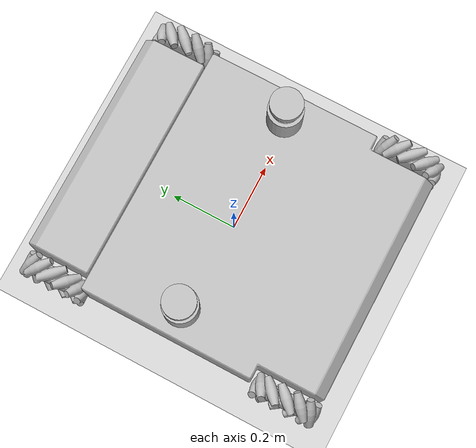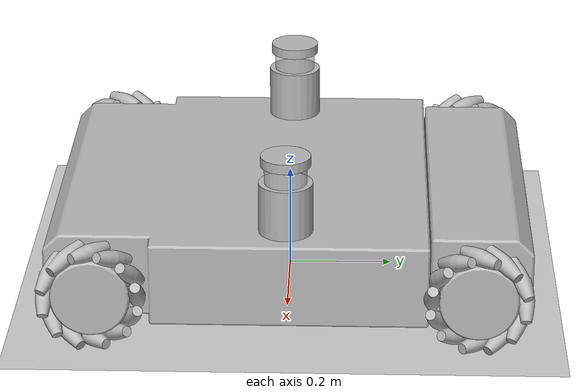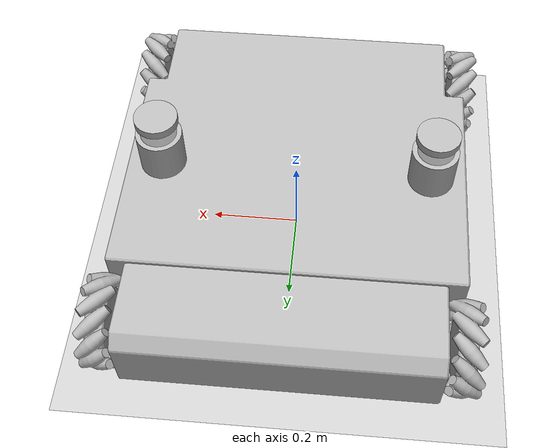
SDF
<?xml version="1.0" ?>
	<sdf version="1.6">
	<world name="velmaverse">

		<physics type="ode">
			<ode>
				<solver>
					<type>world</type>
					<iters>100</iters>
					<friction_model>cone_model</friction_model>
				</solver>
				<constraints>
					<cfm>1e-8</cfm>
				</constraints>
			</ode>
		</physics>

		<!-- Słońce -->
		<include>
			<uri>model://sun</uri>
		</include>

		<!-- Podłoga -->
		<model name="flooria">
			<include>
				<uri>model://flooria</uri>
			</include>
		</model>

		<!-- Platforma dynamiczna -->
		<model name="omnivelma">
			<include>
				<uri>model://omnivelma</uri>
			</include>
		</model>
	</world>
</sdf>

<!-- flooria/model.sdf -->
<sdf version="1.6">
    <model name="flooria">
		<plugin name="flooria" filename="libflooria.so"/>
        <static>true</static>
        <link name="base">
            <collision name="collision">
                <geometry>
                    <plane>
                        <normal>0 0 1</normal>
                        <size>100 100</size>
                    </plane>
                </geometry>
                <surface>
                    <friction>
                        <ode>
                            <mu>100</mu>
                            <mu2>100</mu2>
                        </ode>
                    </friction>
                </surface>
            </collision>
            <visual name="visual">
                <cast_shadows>false</cast_shadows>
                <geometry>
                    <plane>
                        <normal>0 0 1</normal>
                        <size>20 20</size>
                    </plane>
                </geometry>
                <material>
                    <script>
                        <uri>model://flooria/materials</uri>
                        <name>flooria/surface</name>
                    </script>
                </material>
            </visual>
        </link>
    </model>
</sdf>

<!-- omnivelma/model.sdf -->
<sdf version="1.6">
	<model name="omnivelma">
		<plugin name="omnivelma" filename="libomnivelma.so"/>
		<pose>0 0 0.1035 0 0 0</pose>
		<static>false</static>

		<!--Baza całości-->
		<link name="base">
			<pose>0 -0.081 0.019 0 0 0</pose>
			<collision name="base_collision">
				<geometry>
					<mesh>
						<uri>model://omnivelma/meshes/collider/base.dae</uri>
					</mesh>
				</geometry>
			</collision>
			<inertial>
				<mass>60</mass>
				<inertia>
					<ixx>2.72</ixx>
					<ixy>0</ixy>
					<ixz>0</ixz>
					<iyy>2.94</iyy>
					<iyz>0</iyz>
					<izz>5.40</izz>
				</inertia>
			</inertial>
			<visual name="base_visual">
				<geometry>
					<mesh>
						<uri>model://omnivelma/meshes/visual/base.dae</uri>
					</mesh>
				</geometry>
				<material>
					<script>
						<uri>model://omnivelma/materials/omnivelma.material</uri>
						<name>omnivelma/base</name>
					</script>
				</material>
			</visual>
		</link>

		<!-- Ruchomy przód -->
		<link name="front">
			<pose>0 0.364 0.018 0 0 0</pose>
			<collision name="front_collision">
				<geometry>
					<mesh>
						<uri>model://omnivelma/meshes/collider/front.dae</uri>
					</mesh>
				</geometry>
			</collision>
			<inertial>
				<mass>15</mass>
				<inertia>
					<ixx>0.0771</ixx>
					<ixy>0</ixy>
					<ixz>0</ixz>
					<iyy>0.7351</iyy>
					<iyz>0</iyz>
					<izz>0.7483</izz>
				</inertia>
			</inertial>
			<visual name="front_visual">
				<geometry>
					<mesh>
						<uri>model://omnivelma/meshes/visual/front.dae</uri>
					</mesh>
				</geometry>
				<material>
					<script>
						<uri>model://omnivelma/materials/omnivelma.material</uri>
						<name>omnivelma/base</name>
					</script>
				</material>
			</visual>
		</link>

		<!-- Czujniki laserowe (TODO pozycje do dokładniejszego dopracowania) -->
		<plugin name="omnivelma" filename="libmonokl_chain.so"/>
		<include>
			<uri>model://monokl</uri>
			<name>monokl_r</name>
			<pose>0.3 0 0.176 0 0 -1.570796</pose>
		</include>
		<include>
			<uri>model://monokl</uri>
			<name>monokl_l</name>
			<pose>-0.3 0 0.176 0 0 1.570796</pose>
		</include>
		<joint name="monokl_r_fix" type="fixed">
			<parent>base</parent>
			<child>monokl_r::base</child>
		</joint>
		<joint name="monokl_l_fix" type="fixed">
			<parent>base</parent>
			<child>monokl_l::base</child>
		</joint>

		<!-- Czujnik inercji -->
		<include>
			<uri>model://wewucho</uri>
			<name>wewucho</name>
			<pose>0 0 0 0 0 0</pose>
		</include>
		<joint name="wewucho_fix" type="fixed">
			<parent>base</parent>
			<child>wewucho::base</child>
		</joint>

		<!-- Koła wirtualne -->
		<link name="wheel_fl">
			<pose>-0.38 0.36 0 0 0 0</pose>
			<collision name="wheel_fl_collision">
				<geometry>
					<sphere>
						<radius>0.1016</radius>
					</sphere>
				</geometry>
				<surface>
					<friction>
						<ode>
							<mu>0.95</mu>
							<mu2>0.5</mu2>
							<fdir1>-0.707106781186548 -0.707106781186548 0</fdir1>
							<slip1>0.001</slip1>
							<slip2>0.1</slip2>
						</ode>
						<bullet>
							<friction>1</friction>
							<friction2>0</friction2>
							<fdir1>-0.707106781186548 -0.707106781186548 0</fdir1>
							<rolling_friction>0</rolling_friction>
						</bullet>
					</friction>
				</surface>
			</collision>
			<inertial>
				<mass>1.6</mass>
				<inertia>
					<ixx>0.008</ixx>
					<ixy>0</ixy>
					<ixz>0</ixz>
					<iyy>0.004738485</iyy>
					<iyz>0</iyz>
					<izz>0.004738485</izz>
				</inertia>
			</inertial>
			<visual name="wheel_fl_middle">
				<geometry>
					<mesh>
						<uri>model://omnivelma/meshes/visual/wheel.dae</uri>
					</mesh>
				</geometry>
				<material>
					<script>
						<uri>model://omnivelma/materials/omnivelma.material</uri>
						<name>omnivelma/wheels</name>
					</script>
				</material>
			</visual>
			<visual name="wheel_fl_rollers">
				<geometry>
					<mesh>
						<uri>model://omnivelma/meshes/visual/wheel_l.dae</uri>
					</mesh>
				</geometry>
				<material>
					<script>
						<uri>model://omnivelma/materials/omnivelma.material</uri>
						<name>omnivelma/rollers</name>
					</script>
				</material>
			</visual>
		</link>

		<link name="wheel_rr">
			<pose>0.38 -0.36 0 0 0 0</pose>
			<collision name="wheel_rr_collision">
				<geometry>
					<sphere>
						<radius>0.1016</radius>
					</sphere>
				</geometry>
				<surface>
					<friction>
						<ode>
							<mu>0.95</mu>
							<mu2>0.5</mu2>
							<fdir1>0.707106781186548 0.707106781186548 0</fdir1>
							<slip1>0.001</slip1>
							<slip2>0.1</slip2>
						</ode>
						<bullet>
							<friction>1</friction>
							<friction2>0</friction2>
							<fdir1>0.707106781186548 0.707106781186548 0</fdir1>
							<rolling_friction>0</rolling_friction>
						</bullet>
					</friction>
				</surface>
			</collision>
			<inertial>
				<mass>1.6</mass>
				<inertia>
					<ixx>0.008</ixx>
					<ixy>0</ixy>
					<ixz>0</ixz>
					<iyy>0.004738485</iyy>
					<iyz>0</iyz>
					<izz>0.004738485</izz>
				</inertia>
			</inertial>
			<visual name="wheel_rr_middle">
				<geometry>
					<mesh>
						<uri>model://omnivelma/meshes/visual/wheel.dae</uri>
					</mesh>
				</geometry>
				<material>
					<script>
						<uri>model://omnivelma/materials/omnivelma.material</uri>
						<name>omnivelma/wheels</name>
					</script>
				</material>
			</visual>
			<visual name="wheel_rr_rollers">
				<geometry>
					<mesh>
						<uri>model://omnivelma/meshes/visual/wheel_l.dae</uri>
					</mesh>
				</geometry>
				<material>
					<script>
						<uri>model://omnivelma/materials/omnivelma.material</uri>
						<name>omnivelma/rollers</name>
					</script>
				</material>
			</visual>
		</link>

		<link name="wheel_rl">
			<pose>-0.38 -0.36 0 0 0 0</pose>
			<collision name="wheel_rl_collision">
				<geometry>
					<sphere>
						<radius>0.1016</radius>
					</sphere>
				</geometry>
				<surface>
					<friction>
						<ode>
							<mu>0.95</mu>
							<mu2>0.5</mu2>
							<fdir1>-0.707106781186548 0.707106781186548 0</fdir1>
							<slip1>0.001</slip1>
							<slip2>0.1</slip2>
						</ode>
						<bullet>
							<friction>1</friction>
							<friction2>0</friction2>
							<fdir1>-0.707106781186548 0.707106781186548 0</fdir1>
							<rolling_friction>0</rolling_friction>
						</bullet>
					</friction>
				</surface>
			</collision>
			<inertial>
				<mass>1.6</mass>
				<inertia>
					<ixx>0.008</ixx>
					<ixy>0</ixy>
					<ixz>0</ixz>
					<iyy>0.004738485</iyy>
					<iyz>0</iyz>
					<izz>0.004738485</izz>
				</inertia>
			</inertial>
			<visual name="wheel_rl_middle">
				<geometry>
					<mesh>
						<uri>model://omnivelma/meshes/visual/wheel.dae</uri>
					</mesh>
				</geometry>
				<material>
					<script>
						<uri>model://omnivelma/materials/omnivelma.material</uri>
						<name>omnivelma/wheels</name>
					</script>
				</material>
			</visual>
			<visual name="wheel_rl_rollers">
				<geometry>
					<mesh>
						<uri>model://omnivelma/meshes/visual/wheel_r.dae</uri>
					</mesh>
				</geometry>
				<material>
					<script>
						<uri>model://omnivelma/materials/omnivelma.material</uri>
						<name>omnivelma/rollers</name>
					</script>
				</material>
			</visual>
		</link>

		<link name="wheel_fr">
			<pose>0.38 0.36 0 0 0 0</pose>
			<collision name="wheel_fr_collision">
				<geometry>
					<sphere>
						<radius>0.1016</radius>
					</sphere>
				</geometry>
				<surface>
					<friction>
						<ode>
							<mu>0.95</mu>
							<mu2>0.5</mu2>
							<fdir1>0.707106781186548 -0.707106781186548 0</fdir1>
							<slip1>0.001</slip1>
							<slip2>0.1</slip2>
						</ode>
						<bullet>
							<friction>1</friction>
							<friction2>0</friction2>
							<fdir1>0.707106781186548 -0.707106781186548 0</fdir1>
							<rolling_friction>0</rolling_friction>
						</bullet>
					</friction>
				</surface>
			</collision>
			<inertial>
				<mass>1.6</mass>
				<inertia>
					<ixx>0.008</ixx>
					<ixy>0</ixy>
					<ixz>0</ixz>
					<iyy>0.004738485</iyy>
					<iyz>0</iyz>
					<izz>0.004738485</izz>
				</inertia>
			</inertial>
			<visual name="wheel_fr_middle">
				<geometry>
					<mesh>
						<uri>model://omnivelma/meshes/visual/wheel.dae</uri>
					</mesh>
				</geometry>
				<material>
					<script>
						<uri>model://omnivelma/materials/omnivelma.material</uri>
						<name>omnivelma/wheels</name>
					</script>
				</material>
			</visual>
			<visual name="wheel_fr_rollers">
				<geometry>
					<mesh>
						<uri>model://omnivelma/meshes/visual/wheel_r.dae</uri>
					</mesh>
				</geometry>
				<material>
					<script>
						<uri>model://omnivelma/materials/omnivelma.material</uri>
						<name>omnivelma/rollers</name>
					</script>
				</material>
			</visual>
		</link>

		<!-- Środkowy przegub (zawias) -->
		<joint name="middle_joint" type="revolute">
			<parent>base</parent>
			<child>front</child>
			<!-- Pozycja względem dziecka -->
			<pose>0 -0.1 -0.018 0 0 0</pose>
			<axis>
				<xyz>0 1 0</xyz>
			</axis>
		</joint>

		<!-- Przeguby kół (motory) -->
		<joint name="motor_fr" type="revolute">
			<parent>front</parent>
			<child>wheel_fr</child>
			<pose>-0.036 0 0 0 0 0</pose>
			<axis>
				<xyz>-1 0 0</xyz>
				<dynamics>
					<damping>0.5</damping>
					<friction>0.1</friction>
				</dynamics>
			</axis>
		</joint>

		<joint name="motor_fl" type="revolute">
			<parent>front</parent>
			<child>wheel_fl</child>
			<pose>0.036 0 0 0 0 0</pose>
			<axis>
				<xyz>-1 0 0</xyz>
				<dynamics>
					<damping>0.5</damping>
					<friction>0.1</friction>
				</dynamics>
			</axis>
		</joint>

		<joint name="motor_rr" type="revolute">
			<parent>base</parent>
			<child>wheel_rr</child>
			<pose>-0.036 0 0 0 0 0</pose>
			<axis>
				<xyz>-1 0 0</xyz>
				<dynamics>
					<damping>0.5</damping>
					<friction>0.1</friction>
				</dynamics>
			</axis>
		</joint>

		<joint name="motor_rl" type="revolute">
			<parent>base</parent>
			<child>wheel_rl</child>
			<pose>0.036 0 0 0 0 0</pose>
			<axis>
				<xyz>-1 0 0</xyz>
				<dynamics>
					<damping>0.5</damping>
					<friction>0.1</friction>
				</dynamics>
			</axis>
		</joint>

	</model>
</sdf>

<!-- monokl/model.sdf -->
<sdf version="1.6">
    <model name="monokl">

        <!--Korpus-->
        <link name="base">
            <pose>0 0 0 0 0 0</pose>
            <inertial>
				<mass>1.1</mass>
				<inertia>
					<ixx>0.00283314166</ixx>
					<ixy>0</ixy>
					<ixz>0</ixz>
					<iyy>0.00283314166</iyy>
					<iyz>0</iyz>
					<izz>0.00143055</izz>
				</inertia>
			</inertial>
            <collision name="base_collision">
				<pose>0 0 0 0 0 0</pose>
                <geometry>
					<cylinder>
						<radius>0.051</radius>
						<length>0.152</length>
					</cylinder>
                </geometry>
            </collision>
			<visual name="base_visual">
				<pose>0 0 -0.027 0 0 0</pose>
				<geometry>
					<cylinder>
						<radius>0.051</radius>
						<length>0.098</length>
					</cylinder>
				</geometry>
				<material>
					<script>
						<uri>model://monokl/materials/monokl.material</uri>
						<name>monokl/base</name>
					</script>
				</material>
			</visual>
			<visual name="cap_visual">
				<pose>0 0 0.066 0 0 0</pose>
				<geometry>
					<cylinder>
						<radius>0.047</radius>
						<length>0.019</length>
					</cylinder>
				</geometry>
				<material>
					<script>
						<uri>model://monokl/materials/monokl.material</uri>
						<name>monokl/base</name>
					</script>
				</material>
			</visual>
        </link>
		<link name="heart">
			<pose>0 0 0.039 0 0 0</pose>
			<inertial>
				<mass>0.05</mass>
				<inertia>
					<ixx>0.0000008333</ixx>
					<ixy>0</ixy>
					<ixz>0</ixz>
					<iyy>0.0000008333</iyy>
					<iyz>0</iyz>
					<izz>0.0000008333</izz>
				</inertia>
			</inertial>
			<visual name="glass_visual">
				<geometry>
					<cylinder>
						<radius>0.040</radius>
						<length>0.040</length>
					</cylinder>
				</geometry>
				<material>
					<script>
						<uri>model://monokl/materials/monokl.material</uri>
						<name>monokl/glass</name>
					</script>
				</material>
			</visual>
			<sensor name="monokl" type="ray">
				<update_rate>50</update_rate>
				<visualize>false</visualize>
				<topic>/monokl</topic>
				<plugin name="monokl" filename="libmonokl.so"/>
				<ray>
					<scan>
						<horizontal>
							<!-- tryb 50Hz, 270°, próbka co 0,5° -->
							<samples>540</samples>
							<resolution>1</resolution>
							<min_angle>-0.7853982</min_angle>
							<max_angle>3.926991</max_angle>
						</horizontal>
					</scan>
					<range>
						<min>0.06</min>
						<max>20</max>
						<!-- TODO rozdzielczość liniowa? -->
					</range>
					<noise>
						<type>gaussian</type>
						<mean>0.0</mean>
						<stddev>0.012</stddev>
					</noise>
				</ray>
			</sensor>
		</link>
		<joint name="heart_fix" type="fixed">
			<parent>base</parent>
			<child>heart</child>
		</joint>
    </model>
</sdf>

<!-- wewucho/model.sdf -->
<sdf version="1.6">
	<model name="wewucho">

		<!--Korpus-->
		<link name="base">
			<pose>0 0 0 0 0 0</pose>
			<visual name="base_visual">
				<pose>0 0 0 0 0 0</pose>
				<geometry>
					<box>
						<size>0.02 0.02 0.02</size>
					</box>
				</geometry>
				<material>
					<script>
						<uri>model://wewucho/materials/wewucho.material</uri>
						<name>wewucho/base</name>
					</script>
				</material>
			</visual>
			<sensor name="wewucho" type="imu">
				<update_rate>1000</update_rate>
				<visualize>false</visualize>
				<topic>/wewucho</topic>
				<plugin name="wewucho" filename="libwewucho.so"/>
				<imu>
					<!-- NOTE Wartości wyznaczone eksperymentalnie -->
					<angular_velocity>
						<x>
							<noise type="gaussian">
								<mean>0.0</mean>
								<stddev>0.003</stddev>
							</noise>
						</x>
						<y>
							<noise type="gaussian">
								<mean>0.0</mean>
								<stddev>0.003</stddev>
							</noise>
						</y>
						<z>
							<noise type="gaussian">
								<mean>0.0</mean>
								<stddev>0.003</stddev>
							</noise>
						</z>
					</angular_velocity>
					<linear_acceleration>
						<x>
							<noise type="gaussian">
								<mean>0.0</mean>
								<stddev>0.1</stddev>
							</noise>
						</x>
						<y>
							<noise type="gaussian">
								<mean>0.0</mean>
								<stddev>0.1</stddev>
							</noise>
						</y>
						<z>
							<noise type="gaussian">
								<mean>0.0</mean>
								<stddev>0.1</stddev>
							</noise>
						</z>
					</linear_acceleration>
				</imu>
			</sensor>
		</link>
	</model>
</sdf>
